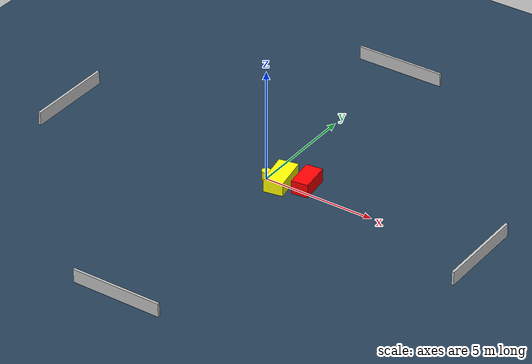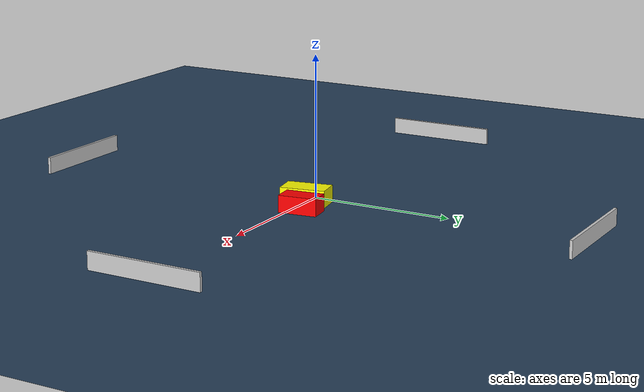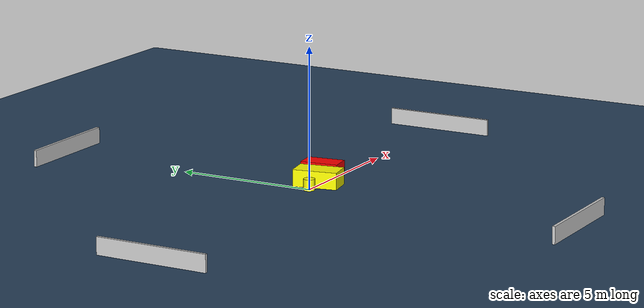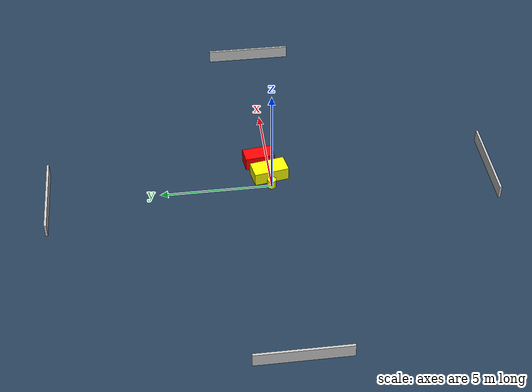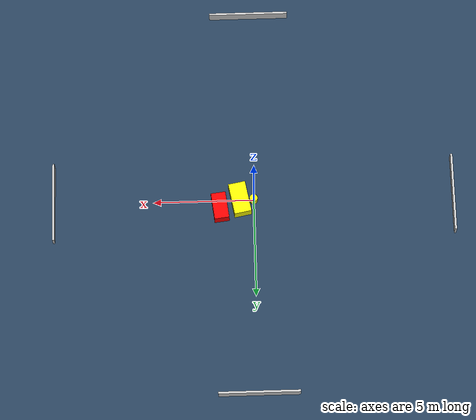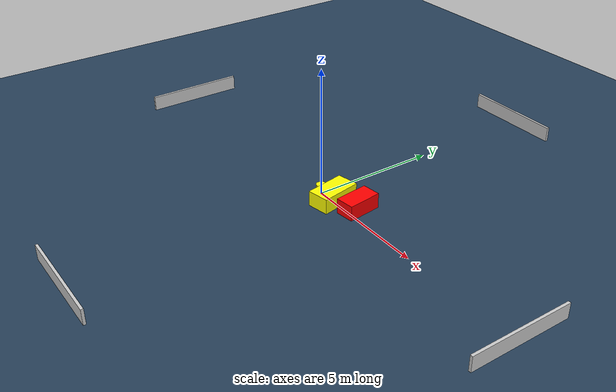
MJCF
<?xml version="1.0" ?>
<mujoco model="generated_environment">
  <option timestep="0.01" integrator="RK4" cone="elliptic"/>
  <default>
    <geom density="1"/>
  </default>
  <asset>
    <texture builtin="gradient" height="3072" name="skybox" rgb1="0.3 0.5 0.7" rgb2="0 0 0" type="skybox" width="512"/>
    <texture builtin="checker" height="300" name="groundplane" rgb1="0.2 0.3 0.4" rgb2="0.1 0.2 0.3" type="2d" width="300"/>
    <material name="groundplane" reflectance="0.2" texrepeat="5 5" texture="groundplane"/>
  </asset>
  <worldbody>
    <light dir="0 0 -1" directional="true" pos="0 0 1.5"/>
    <geom condim="3" friction="0.5 0.005 0.001" material="groundplane" name="floor" pos="0 0 0" size="0 0 0.05" type="plane"/>
    <body name="walls">
      <geom name="wall_1" condim="4" pos="-10.0 0.0 0.3" rgba="0.800000011920929 0.800000011920929 0.800000011920929 1.0" size="0.05 2.0 0.3" type="box"/>
      <geom name="wall_2" condim="4" pos="10.0 0.0 0.3" rgba="0.800000011920929 0.800000011920929 0.800000011920929 1.0" size="0.05 2.0 0.3" type="box"/>
      <geom name="wall_3" condim="4" pos="0.0 -10.0 0.3" rgba="0.800000011920929 0.800000011920929 0.800000011920929 1.0" size="2.0 0.05 0.3" type="box"/>
      <geom name="wall_4" condim="4" pos="0.0 10.0 0.3" rgba="0.800000011920929 0.800000011920929 0.800000011920929 1.0" size="2.0 0.05 0.3" type="box"/>
    </body>
    <body name="robot">
      <joint name="joint_x" type="slide" pos="0 0 0" axis="1 0 0"/>
      <joint name="joint_y" type="slide" pos="0 0 0" axis="0 1 0"/>
      <geom name="robot" type="cylinder" pos="0.0 0.0 0.2" size="0.2 0.2 0.0" mass="5.0" friction="1.0 0.005 0.0001" condim="4" rgba="1.0 1.0 0.0 1.0"/>
    </body>
    <body name="obstacle_1_movable">
      <geom name="obstacle_1_movable" condim="4" pos="0.6927375212205252 0.027411142794734947 0.3" euler="0 0 280.49269317593667" friction="0.0 0.005 0.001" rgba="1.0 1.0 0.0 1.0" size="0.7946585587538715 0.43000031127487415 0.3" type="box" mass="0.1"/>
      <joint type="free"/>
    </body>
    <body name="obstacle_2_static">
      <geom name="obstacle_2_static" condim="4" pos="1.6902653649232802 0.4127512633427602 0.3" euler="0 0 277.11292738432746" friction="0.0 0.005 0.001" rgba="1.0 0.0 0.0 1.0" size="0.6729274564970847 0.36802602667252704 0.3" type="box"/>
    </body>
  </worldbody>
  <actuator>
    <motor name="actuator_x" joint="joint_x" gear="1" ctrlrange="-1 1"/>
    <motor name="actuator_y" joint="joint_y" gear="1" ctrlrange="-1 1"/>
  </actuator>
</mujoco>
